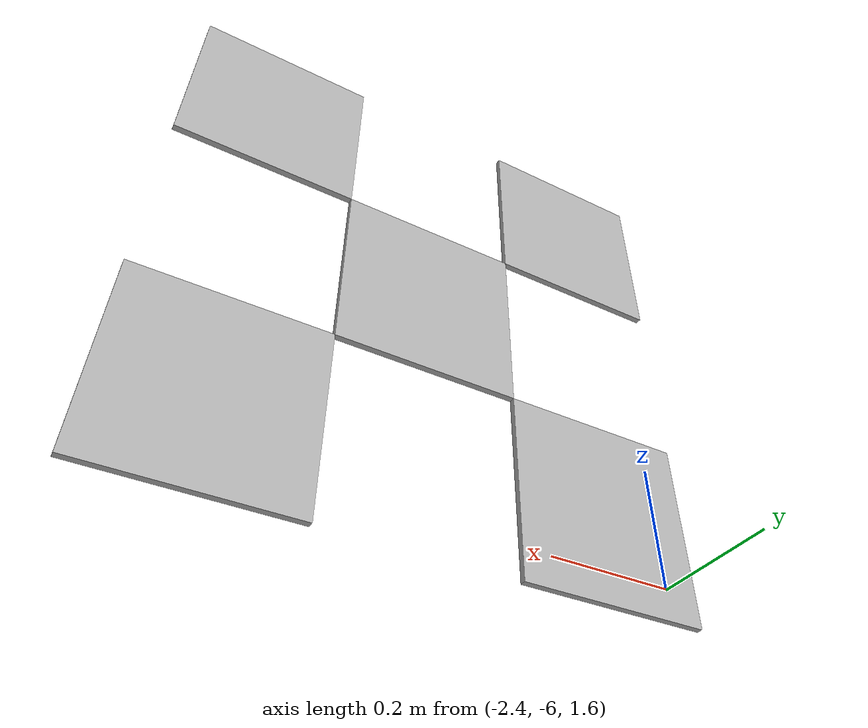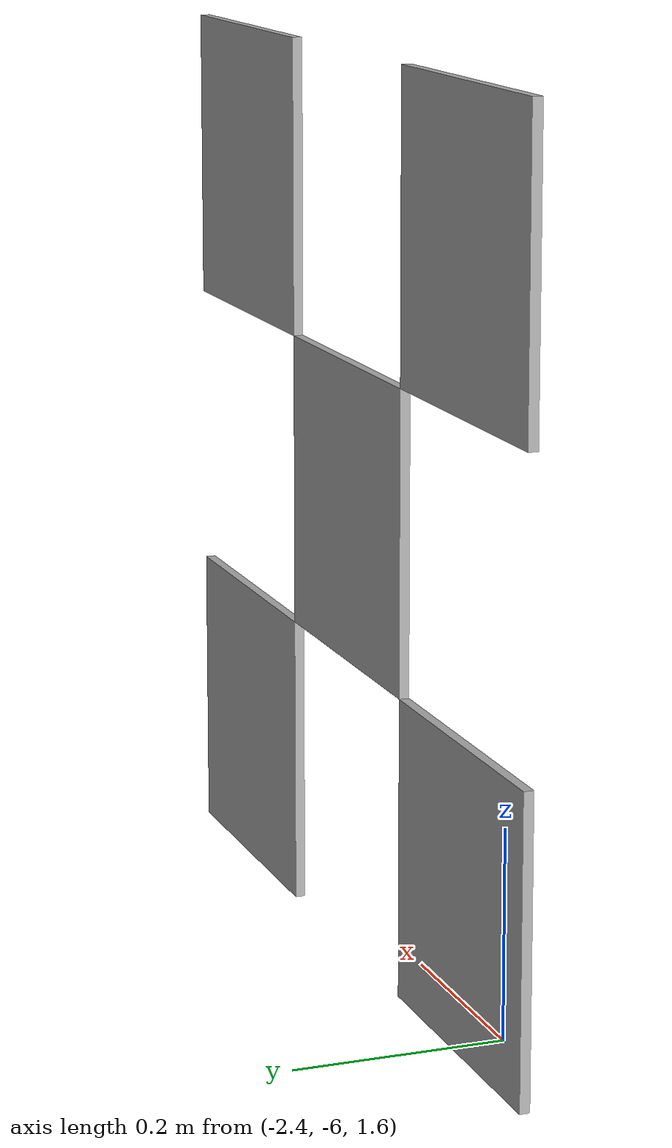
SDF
<?xml version="1.0" ?>
<sdf version="1.4">

	<model name='tag_bundle11'>

		<static>True</static>

		<link name="tag_50">

			<pose>-2 -6 2 0 0 -1.5713</pose>

			<inertial>
	        	<mass>0.1</mass>

	        	<inertia>
					<ixx>0.0166667</ixx>
					<ixy>0</ixy>
					<ixz>0</ixz>
					<iyy>0.0166667</iyy>
					<iyz>0</iyz>
					<izz>0.0166667</izz>
        		</inertia>

        		<pose frame=''>0 0 0 0 -0 0</pose>
      		</inertial>

			<pose frame=''>0 0 0 0 -0 0</pose>
			<gravity>1</gravity>
			<self_collide>0</self_collide>
			<kinematic>0</kinematic>
			<enable_wind>0</enable_wind>

			<visual name='visual_50'>
				<pose frame=''>0 0 0 0 -0 0</pose>

		        <geometry>
		        	<box>
		        	<size>0.01 0.3 0.3</size>
		        	</box>
		        </geometry>

		        <material>
		        	<lighting>0</lighting>

		        	<script>
		        		<uri>models://media/materials/scripts/Apriltag.material</uri>
		        		<name>Apriltag/id50</name>
		          	</script>

		        	<shader type='vertex'>
		        		<normal_map>__default__</normal_map>
		          	</shader>

		        	<ambient>0.3 0.3 0.3 1</ambient>
		        	<diffuse>0.7 0.7 0.7 1</diffuse>
		        	<specular>0.01 0.01 0.01 1</specular>
		        	<emissive>0 0 0 1</emissive>
		        </material>

		        <transparency>0</transparency>
		        <cast_shadows>1</cast_shadows>
			</visual>

			<collision name='collision_50'>
				<laser_retro>0</laser_retro>
        		<max_contacts>10</max_contacts>
        		<pose frame=''>0 0 0 0 -0 0</pose>

		        <geometry>
		        	<box>
		        		<size>0.01 0.3 0.3</size>
		        	</box>
		        </geometry>

		        <surface>
		        	<friction>
		            	<ode>
		            		<mu>1</mu>
		            		<mu2>1</mu2>
		            		<fdir1>0 0 0</fdir1>
		            		<slip1>0</slip1>
		            		<slip2>0</slip2>
		            	</ode>

		           		<torsional>
		            		<coefficient>1</coefficient>
	            			<patch_radius>0</patch_radius>
	            			<surface_radius>0</surface_radius>
	            			<use_patch_radius>1</use_patch_radius>

	            			<ode>
		                		<slip>0</slip>
		              		</ode>
		            	</torsional>
		          	</friction>

		        	<bounce>
		            	<restitution_coefficient>0</restitution_coefficient>
		            	<threshold>1e+06</threshold>
		        	</bounce>

		        	<contact>
		            	<collide_without_contact>0</collide_without_contact>
		            	<collide_without_contact_bitmask>1</collide_without_contact_bitmask>
		            	<collide_bitmask>1</collide_bitmask>

		            	<ode>
		            		<soft_cfm>0</soft_cfm>
		            		<soft_erp>0.2</soft_erp>
		            		<kp>1e+13</kp>
		            		<kd>1</kd>
		            		<max_vel>0.01</max_vel>
		            		<min_depth>0</min_depth>
		            	</ode>

			            <bullet>
			            	<split_impulse>1</split_impulse>
			            	<split_impulse_penetration_threshold>-0.01</split_impulse_penetration_threshold>
			            	<soft_cfm>0</soft_cfm>
			            	<soft_erp>0.2</soft_erp>
			            	<kp>1e+13</kp>
			            	<kd>1</kd>
			            </bullet>
		        	</contact>
		        </surface>
		    </collision>
		</link>
 -->
		<link name="tag_51">

			<pose>-2.3 -6 2.3 0 0 -1.5713</pose>

			<inertial>
	        	<mass>0.1</mass>

	        	<inertia>
					<ixx>0.0166667</ixx>
					<ixy>0</ixy>
					<ixz>0</ixz>
					<iyy>0.0166667</iyy>
					<iyz>0</iyz>
					<izz>0.0166667</izz>
        		</inertia>

        		<pose frame=''>0 0 0 0 -0 0</pose>
      		</inertial>

			<pose frame=''>0 0 0 0 -0 0</pose>
			<gravity>1</gravity>
			<self_collide>0</self_collide>
			<kinematic>0</kinematic>
			<enable_wind>0</enable_wind>

			<visual name='visual_51'>
				<pose frame=''>0 0 0 0 -0 0</pose>

		        <geometry>
		        	<box>
		        	<size>0.01 0.3 0.3</size>
		        	</box>
		        </geometry>

		        <material>
		        	<lighting>0</lighting>

		        	<script>
		        		<uri>models://media/materials/scripts/Apriltag.material</uri>
		        		<name>Apriltag/id51</name>
		          	</script>

		        	<shader type='vertex'>
		        		<normal_map>__default__</normal_map>
		          	</shader>

		        	<ambient>0.3 0.3 0.3 1</ambient>
		        	<diffuse>0.7 0.7 0.7 1</diffuse>
		        	<specular>0.01 0.01 0.01 1</specular>
		        	<emissive>0 0 0 1</emissive>
		        </material>

		        <transparency>0</transparency>
		        <cast_shadows>1</cast_shadows>
			</visual>

			<collision name='collision_51'>
				<laser_retro>0</laser_retro>
        		<max_contacts>10</max_contacts>
        		<pose frame=''>0 0 0 0 -0 0</pose>

		        <geometry>
		        	<box>
		        		<size>0.01 0.3 0.3</size>
		        	</box>
		        </geometry>

		        <surface>
		        	<friction>
		            	<ode>
		            		<mu>1</mu>
		            		<mu2>1</mu2>
		            		<fdir1>0 0 0</fdir1>
		            		<slip1>0</slip1>
		            		<slip2>0</slip2>
		            	</ode>

		           		<torsional>
		            		<coefficient>1</coefficient>
	            			<patch_radius>0</patch_radius>
	            			<surface_radius>0</surface_radius>
	            			<use_patch_radius>1</use_patch_radius>

	            			<ode>
		                		<slip>0</slip>
		              		</ode>
		            	</torsional>
		          	</friction>

		        	<bounce>
		            	<restitution_coefficient>0</restitution_coefficient>
		            	<threshold>1e+06</threshold>
		        	</bounce>

		        	<contact>
		            	<collide_without_contact>0</collide_without_contact>
		            	<collide_without_contact_bitmask>1</collide_without_contact_bitmask>
		            	<collide_bitmask>1</collide_bitmask>

		            	<ode>
		            		<soft_cfm>0</soft_cfm>
		            		<soft_erp>0.2</soft_erp>
		            		<kp>1e+13</kp>
		            		<kd>1</kd>
		            		<max_vel>0.01</max_vel>
		            		<min_depth>0</min_depth>
		            	</ode>

			            <bullet>
			            	<split_impulse>1</split_impulse>
			            	<split_impulse_penetration_threshold>-0.01</split_impulse_penetration_threshold>
			            	<soft_cfm>0</soft_cfm>
			            	<soft_erp>0.2</soft_erp>
			            	<kp>1e+13</kp>
			            	<kd>1</kd>
			            </bullet>
		        	</contact>
		        </surface>
		    </collision>
		</link>

		<link name="tag_52">

			<pose>-1.7 -6 2.3 0 0 -1.5713</pose>

			<inertial>
	        	<mass>0.1</mass>

	        	<inertia>
					<ixx>0.0166667</ixx>
					<ixy>0</ixy>
					<ixz>0</ixz>
					<iyy>0.0166667</iyy>
					<iyz>0</iyz>
					<izz>0.0166667</izz>
        		</inertia>

        		<pose frame=''>0 0 0 0 -0 0</pose>
      		</inertial>

			<pose frame=''>0 0 0 0 -0 0</pose>
			<gravity>1</gravity>
			<self_collide>0</self_collide>
			<kinematic>0</kinematic>
			<enable_wind>0</enable_wind>

			<visual name='visual_52'>
				<pose frame=''>0 0 0 0 -0 0</pose>

		        <geometry>
		        	<box>
		        	<size>0.01 0.3 0.3</size>
		        	</box>
		        </geometry>

		        <material>
		        	<lighting>0</lighting>

		        	<script>
		        		<uri>models://media/materials/scripts/Apriltag.material</uri>
		        		<name>Apriltag/id52</name>
		          	</script>

		        	<shader type='vertex'>
		        		<normal_map>__default__</normal_map>
		          	</shader>

		        	<ambient>0.3 0.3 0.3 1</ambient>
		        	<diffuse>0.7 0.7 0.7 1</diffuse>
		        	<specular>0.01 0.01 0.01 1</specular>
		        	<emissive>0 0 0 1</emissive>
		        </material>

		        <transparency>0</transparency>
		        <cast_shadows>1</cast_shadows>
			</visual>

			<collision name='collision_52'>
				<laser_retro>0</laser_retro>
        		<max_contacts>10</max_contacts>
        		<pose frame=''>0 0 0 0 -0 0</pose>

		        <geometry>
		        	<box>
		        		<size>0.01 0.3 0.3</size>
		        	</box>
		        </geometry>

		        <surface>
		        	<friction>
		            	<ode>
		            		<mu>1</mu>
		            		<mu2>1</mu2>
		            		<fdir1>0 0 0</fdir1>
		            		<slip1>0</slip1>
		            		<slip2>0</slip2>
		            	</ode>

		           		<torsional>
		            		<coefficient>1</coefficient>
	            			<patch_radius>0</patch_radius>
	            			<surface_radius>0</surface_radius>
	            			<use_patch_radius>1</use_patch_radius>

	            			<ode>
		                		<slip>0</slip>
		              		</ode>
		            	</torsional>
		          	</friction>

		        	<bounce>
		            	<restitution_coefficient>0</restitution_coefficient>
		            	<threshold>1e+06</threshold>
		        	</bounce>

		        	<contact>
		            	<collide_without_contact>0</collide_without_contact>
		            	<collide_without_contact_bitmask>1</collide_without_contact_bitmask>
		            	<collide_bitmask>1</collide_bitmask>

		            	<ode>
		            		<soft_cfm>0</soft_cfm>
		            		<soft_erp>0.2</soft_erp>
		            		<kp>1e+13</kp>
		            		<kd>1</kd>
		            		<max_vel>0.01</max_vel>
		            		<min_depth>0</min_depth>
		            	</ode>

			            <bullet>
			            	<split_impulse>1</split_impulse>
			            	<split_impulse_penetration_threshold>-0.01</split_impulse_penetration_threshold>
			            	<soft_cfm>0</soft_cfm>
			            	<soft_erp>0.2</soft_erp>
			            	<kp>1e+13</kp>
			            	<kd>1</kd>
			            </bullet>
		        	</contact>
		        </surface>
		    </collision>
		</link>

		<link name="tag_53">

			<pose>-1.7 -6 1.7 0 0 -1.5713</pose>

			<inertial>
	        	<mass>0.1</mass>

	        	<inertia>
					<ixx>0.0166667</ixx>
					<ixy>0</ixy>
					<ixz>0</ixz>
					<iyy>0.0166667</iyy>
					<iyz>0</iyz>
					<izz>0.0166667</izz>
        		</inertia>

        		<pose frame=''>0 0 0 0 -0 0</pose>
      		</inertial>

			<pose frame=''>0 0 0 0 -0 0</pose>
			<gravity>1</gravity>
			<self_collide>0</self_collide>
			<kinematic>0</kinematic>
			<enable_wind>0</enable_wind>

			<visual name='visual_53'>
				<pose frame=''>0 0 0 0 -0 0</pose>

		        <geometry>
		        	<box>
		        	<size>0.01 0.3 0.3</size>
		        	</box>
		        </geometry>

		        <material>
		        	<lighting>0</lighting>

		        	<script>
		        		<uri>models://media/materials/scripts/Apriltag.material</uri>
		        		<name>Apriltag/id53</name>
		          	</script>

		        	<shader type='vertex'>
		        		<normal_map>__default__</normal_map>
		          	</shader>

		        	<ambient>0.3 0.3 0.3 1</ambient>
		        	<diffuse>0.7 0.7 0.7 1</diffuse>
		        	<specular>0.01 0.01 0.01 1</specular>
		        	<emissive>0 0 0 1</emissive>
		        </material>

		        <transparency>0</transparency>
		        <cast_shadows>1</cast_shadows>
			</visual>

			<collision name='collision_53'>
				<laser_retro>0</laser_retro>
        		<max_contacts>10</max_contacts>
        		<pose frame=''>0 0 0 0 -0 0</pose>

		        <geometry>
		        	<box>
		        		<size>0.01 0.3 0.3</size>
		        	</box>
		        </geometry>

		        <surface>
		        	<friction>
		            	<ode>
		            		<mu>1</mu>
		            		<mu2>1</mu2>
		            		<fdir1>0 0 0</fdir1>
		            		<slip1>0</slip1>
		            		<slip2>0</slip2>
		            	</ode>

		           		<torsional>
		            		<coefficient>1</coefficient>
	            			<patch_radius>0</patch_radius>
	            			<surface_radius>0</surface_radius>
	            			<use_patch_radius>1</use_patch_radius>

	            			<ode>
		                		<slip>0</slip>
		              		</ode>
		            	</torsional>
		          	</friction>

		        	<bounce>
		            	<restitution_coefficient>0</restitution_coefficient>
		            	<threshold>1e+06</threshold>
		        	</bounce>

		        	<contact>
		            	<collide_without_contact>0</collide_without_contact>
		            	<collide_without_contact_bitmask>1</collide_without_contact_bitmask>
		            	<collide_bitmask>1</collide_bitmask>

		            	<ode>
		            		<soft_cfm>0</soft_cfm>
		            		<soft_erp>0.2</soft_erp>
		            		<kp>1e+13</kp>
		            		<kd>1</kd>
		            		<max_vel>0.01</max_vel>
		            		<min_depth>0</min_depth>
		            	</ode>

			            <bullet>
			            	<split_impulse>1</split_impulse>
			            	<split_impulse_penetration_threshold>-0.01</split_impulse_penetration_threshold>
			            	<soft_cfm>0</soft_cfm>
			            	<soft_erp>0.2</soft_erp>
			            	<kp>1e+13</kp>
			            	<kd>1</kd>
			            </bullet>
		        	</contact>
		        </surface>
		    </collision>
		</link>

		<link name="tag_54">

			<pose>-2.3 -6 1.7 0 0 -1.5713</pose>

			<inertial>
	        	<mass>0.1</mass>

	        	<inertia>
					<ixx>0.0166667</ixx>
					<ixy>0</ixy>
					<ixz>0</ixz>
					<iyy>0.0166667</iyy>
					<iyz>0</iyz>
					<izz>0.0166667</izz>
        		</inertia>

        		<pose frame=''>0 0 0 0 -0 0</pose>
      		</inertial>

			<pose frame=''>0 0 0 0 -0 0</pose>
			<gravity>1</gravity>
			<self_collide>0</self_collide>
			<kinematic>0</kinematic>
			<enable_wind>0</enable_wind>

			<visual name='visual_54'>
				<pose frame=''>0 0 0 0 -0 0</pose>

		        <geometry>
		        	<box>
		        	<size>0.01 0.3 0.3</size>
		        	</box>
		        </geometry>

		        <material>
		        	<lighting>0</lighting>

		        	<script>
		        		<uri>models://media/materials/scripts/Apriltag.material</uri>
		        		<name>Apriltag/id54</name>
		          	</script>

		        	<shader type='vertex'>
		        		<normal_map>__default__</normal_map>
		          	</shader>

		        	<ambient>0.3 0.3 0.3 1</ambient>
		        	<diffuse>0.7 0.7 0.7 1</diffuse>
		        	<specular>0.01 0.01 0.01 1</specular>
		        	<emissive>0 0 0 1</emissive>
		        </material>

		        <transparency>0</transparency>
		        <cast_shadows>1</cast_shadows>
			</visual>

			<collision name='collision_54'>
				<laser_retro>0</laser_retro>
        		<max_contacts>10</max_contacts>
        		<pose frame=''>0 0 0 0 -0 0</pose>

		        <geometry>
		        	<box>
		        		<size>0.01 0.3 0.3</size>
		        	</box>
		        </geometry>

		        <surface>
		        	<friction>
		            	<ode>
		            		<mu>1</mu>
		            		<mu2>1</mu2>
		            		<fdir1>0 0 0</fdir1>
		            		<slip1>0</slip1>
		            		<slip2>0</slip2>
		            	</ode>

		           		<torsional>
		            		<coefficient>1</coefficient>
	            			<patch_radius>0</patch_radius>
	            			<surface_radius>0</surface_radius>
	            			<use_patch_radius>1</use_patch_radius>

	            			<ode>
		                		<slip>0</slip>
		              		</ode>
		            	</torsional>
		          	</friction>

		        	<bounce>
		            	<restitution_coefficient>0</restitution_coefficient>
		            	<threshold>1e+06</threshold>
		        	</bounce>

		        	<contact>
		            	<collide_without_contact>0</collide_without_contact>
		            	<collide_without_contact_bitmask>1</collide_without_contact_bitmask>
		            	<collide_bitmask>1</collide_bitmask>

		            	<ode>
		            		<soft_cfm>0</soft_cfm>
		            		<soft_erp>0.2</soft_erp>
		            		<kp>1e+13</kp>
		            		<kd>1</kd>
		            		<max_vel>0.01</max_vel>
		            		<min_depth>0</min_depth>
		            	</ode>

			            <bullet>
			            	<split_impulse>1</split_impulse>
			            	<split_impulse_penetration_threshold>-0.01</split_impulse_penetration_threshold>
			            	<soft_cfm>0</soft_cfm>
			            	<soft_erp>0.2</soft_erp>
			            	<kp>1e+13</kp>
			            	<kd>1</kd>
			            </bullet>
		        	</contact>
		        </surface>
		    </collision>
		</link>

		<joint name = "joint_1" type="fixed">
			<axis xyz="0 0 0" />
			<parent link="tag_50" />
			<child link="tag_51" />
	    </joint>

	    <joint name = "joint_2" type="fixed">
			<axis xyz="0 0 0" />
			<parent link="tag_50" />
			<child link="tag_52" />
	    </joint>

	    <joint name = "joint_3" type="fixed">
			<axis xyz="0 0 0" />
			<parent link="tag_50" />
			<child link="tag_53" />
	    </joint>

	    <joint name = "joint_4" type="fixed">
			<axis xyz="0 0 0" />
			<parent link="tag_50" />
			<child link="tag_54" />
	    </joint>

	</model>
</sdf>
